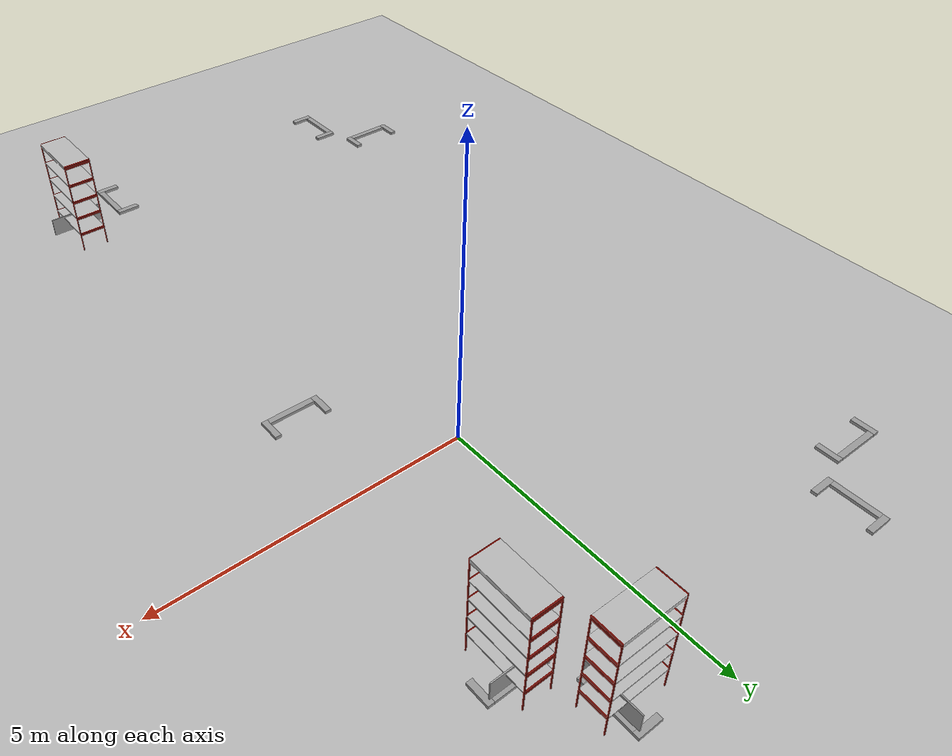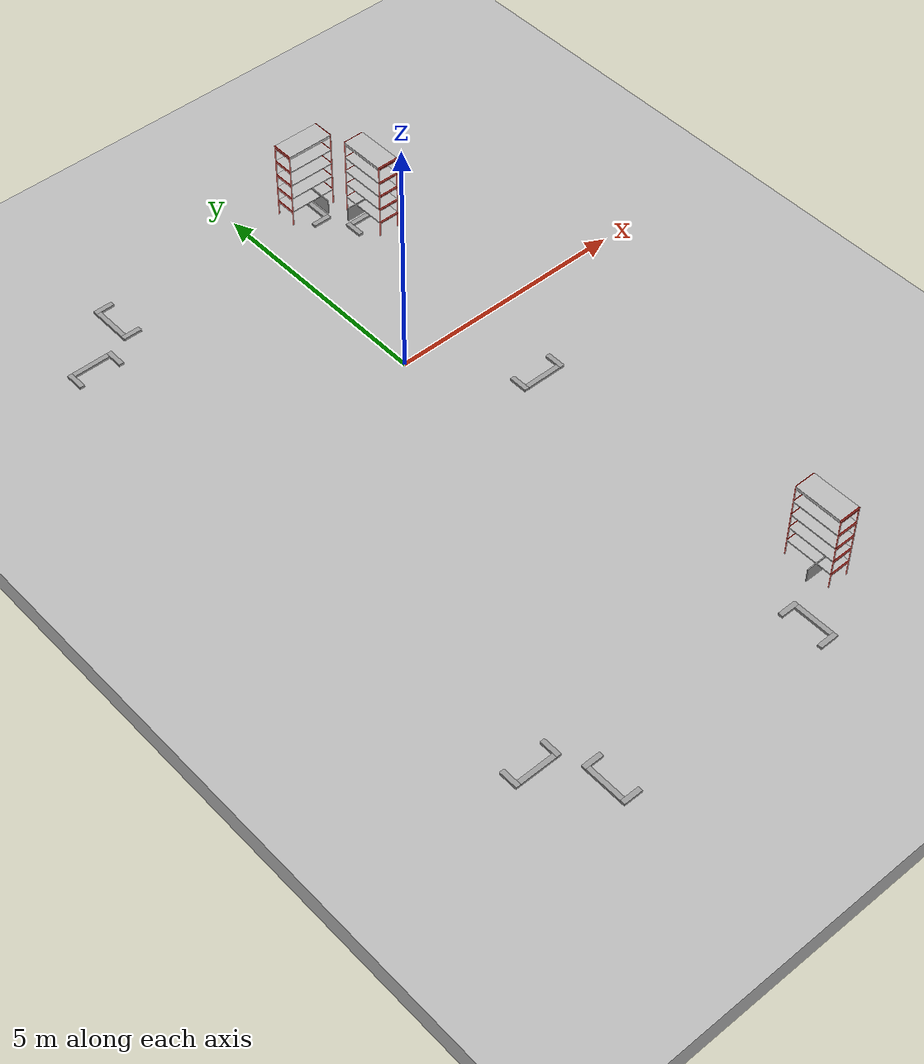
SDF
<sdf version="1.6">
 <world name="default">
  <light name="light0" type="directional">
   <pose>0 -18.818 8 0.75 -0 0</pose>
   <diffuse>0.5 0.5 0.5 1</diffuse>
   <specular>0.1 0.1 0.1 1</specular>
   <direction>0.1 0.1 -0.9</direction>
   <attenuation>
    <range>20</range>
    <constant>0.5</constant>
    <linear>0.01</linear>
    <quadratic>0.001</quadratic>
   </attenuation>
   <cast_shadows>0</cast_shadows>
  </light>
  <light name="light3" type="directional">
   <pose>3.9239 1.64974 4 0 1.2 0</pose>
   <diffuse>0.5 0.5 0.5 1</diffuse>
   <specular>0.1 0.1 0.1 1</specular>
   <direction>0.1 0.1 -0.9</direction>
   <attenuation>
    <range>20</range>
    <constant>0.5</constant>
    <linear>0.01</linear>
    <quadratic>0.001</quadratic>
   </attenuation>
   <cast_shadows>0</cast_shadows>
  </light>
  <light name="light5" type="directional">
   <pose>0.454419 12.4783 5 -0.8 0 0</pose>
   <diffuse>0.5 0.5 0.5 1</diffuse>
   <specular>0.1 0.1 0.1 1</specular>
   <direction>0.1 0.1 -0.9</direction>
   <attenuation>
    <range>20</range>
    <constant>0.5</constant>
    <linear>0.01</linear>
    <quadratic>0.001</quadratic>
   </attenuation>
   <cast_shadows>0</cast_shadows>
  </light>
  <scene>
   <shadows>false</shadows>
   <ambient>0.5 0.5 0.5 1.0</ambient>
   <grid>false</grid>
   <sky><time>22</time><sunrise>20</sunrise><sunset>21</sunset><clouds><humidity>0</humidity></clouds></sky>
  </scene>
  <include><uri>model://ground_plane</uri></include>
  <include><uri>model://moon_surface</uri><pose>0 0 -0.25 0 0 0</pose></include>
  <include><uri>model://rack_base</uri><name>rack_base</name><pose>1.421 4.35 0.05 0 -0 -1.57</pose></include>
  <include><uri>model://rack</uri><name>rack1</name><pose>1.26 4.35 0.1 0 -0 3.14</pose></include>
  <include><uri>model://rack</uri><name>rack2</name><pose>2.03 3.30 0.1 0 -0 -1.57</pose></include>
  <include><uri>model://rack</uri><name>rack3</name><pose>2.03 -8.09 0.1 0 -0 1.57</pose></include>
  <plugin name="gazebo_link_attacher" filename="libgazebo_link_attacher.so"/>
  <plugin name="gazebo_ros_state" filename="libgazebo_ros_state.so">
   <ros><namespace>/_demo</namespace><argument>model_states:=model_states_demo</argument></ros>
   <update_rate>6.0</update_rate>
  </plugin>
 </world>
</sdf>
